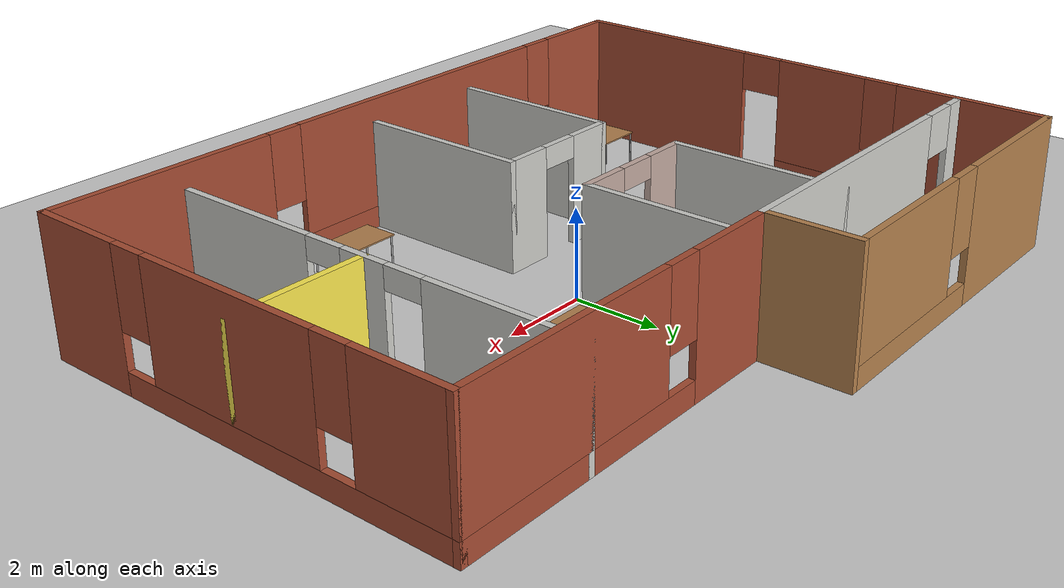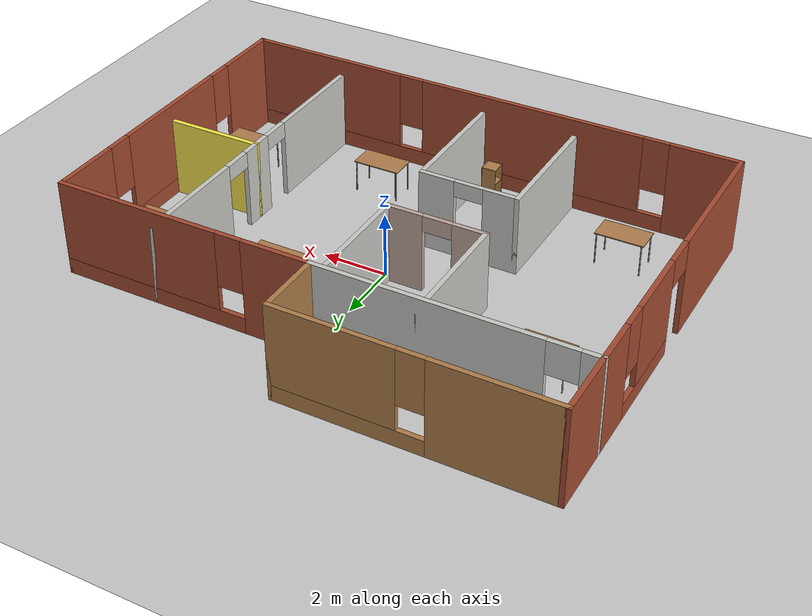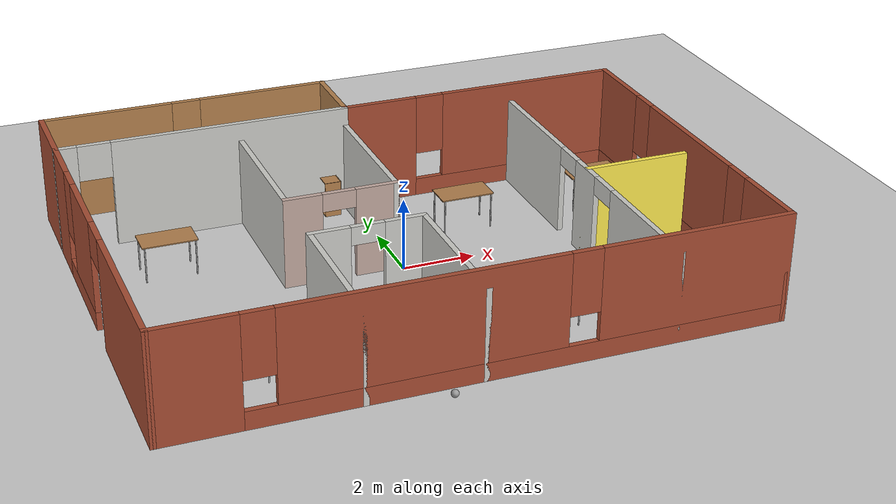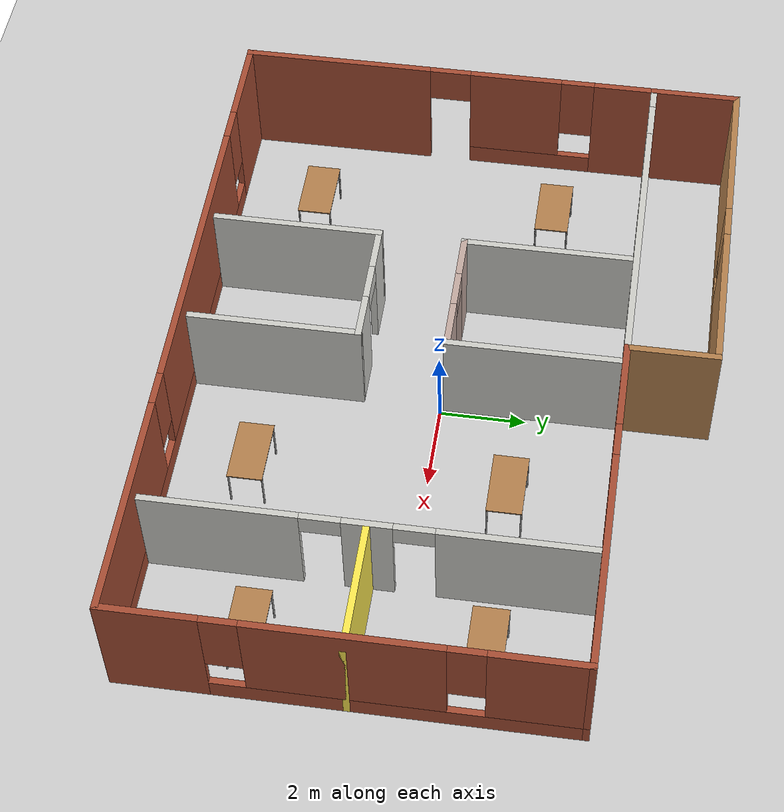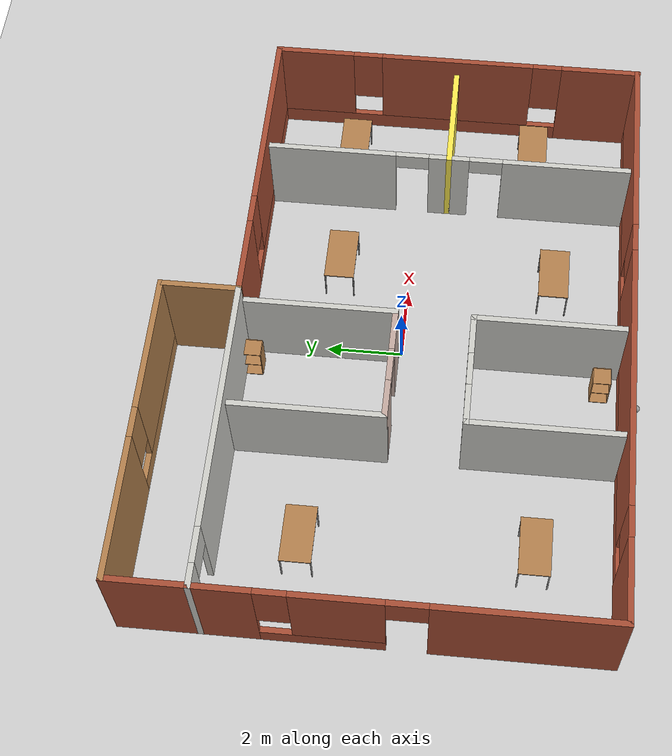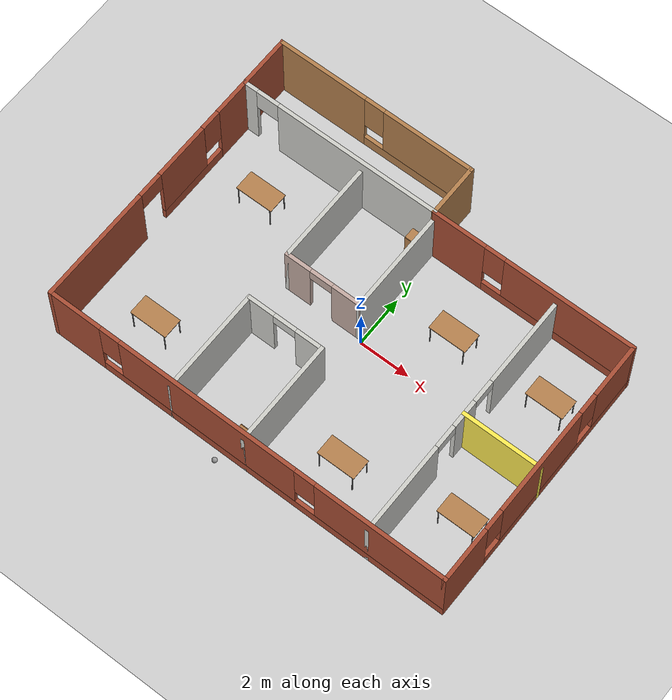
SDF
<sdf version="1.6">
 <world name="default">
  <plugin name="welcome_message" filename="libwelcome_message.so"/>
  <light name="sun" type="directional">
   <pose>0 0 10 0 -0 0</pose>
   <diffuse>0.8 0.8 0.8 1</diffuse>
   <specular>0.2 0.2 0.2 1</specular>
   <attenuation>
    <range>1000</range>
    <constant>0.9</constant>
    <linear>0.01</linear>
    <quadratic>0.001</quadratic>
   </attenuation>
   <direction>-0.5 0.1 -0.9</direction>
   <spot><inner_angle>0</inner_angle><outer_angle>0</outer_angle><falloff>0</falloff></spot>
  </light>
  <model name="ground_plane">
   <static>1</static>
   <link name="link">
    <collision name="collision">
     <geometry><plane><normal>0 0 1</normal><size>100 100</size></plane></geometry>
     <surface>
      <contact><collide_bitmask>65535</collide_bitmask></contact>
      <friction><ode><mu>100</mu><mu2>50</mu2></ode></friction>
     </surface>
    </collision>
    <visual name="visual">
     <cast_shadows>0</cast_shadows>
     <geometry><plane><normal>0 0 1</normal><size>100 100</size></plane></geometry>
     <material>
      <script><uri>file://media/materials/scripts/gazebo.material</uri><name>Gazebo/Grey</name></script>
     </material>
    </visual>
   </link>
  </model>
  <gravity>0 0 -9.8</gravity>
  <magnetic_field>6e-06 2.3e-05 -4.2e-05</magnetic_field>
  <atmosphere type="adiabatic"/>
  <physics name="default_physics" default="0" type="ode">
   <max_step_size>0.001</max_step_size>
   <real_time_factor>1</real_time_factor>
   <real_time_update_rate>1000</real_time_update_rate>
  </physics>
  <scene><ambient>0.4 0.4 0.4 1</ambient><background>0.7 0.7 0.7 1</background><shadows>1</shadows></scene>
  <spherical_coordinates>
   <surface_model>EARTH_WGS84</surface_model>
   <latitude_deg>0</latitude_deg>
   <longitude_deg>0</longitude_deg>
   <elevation>0</elevation>
   <heading_deg>0</heading_deg>
  </spherical_coordinates>
  <model name="Project_building">
   <pose>-0.16773 0.138901 0 0 -0 0</pose>
   <link name="Wall_0">
    <pose>-8 -1 0 0 -0 -1.5708</pose>
    <visual name="Wall_0_Visual_0">
     <pose>-4.30639 0 1.5 0 -0 0</pose>
     <geometry><box><size>1.53722 0.15 3</size></box></geometry>
     <material>
      <script><uri>file://media/materials/scripts/gazebo.material</uri><name>Gazebo/Bricks</name></script>
      <ambient>1 1 1 1</ambient>
     </material>
     <meta><layer>0</layer></meta>
    </visual>
    <collision name="Wall_0_Collision_0">
     <geometry><box><size>1.53722 0.15 3</size></box></geometry>
     <pose>-4.30639 0 1.5 0 -0 0</pose>
    </collision>
    <visual name="Wall_0_Visual_1">
     <pose>2.7875 0 1.5 0 -0 0</pose>
     <geometry><box><size>4.575 0.15 3</size></box></geometry>
     <material>
      <script><uri>file://media/materials/scripts/gazebo.material</uri><name>Gazebo/Bricks</name></script>
      <ambient>1 1 1 1</ambient>
     </material>
     <meta><layer>0</layer></meta>
    </visual>
    <collision name="Wall_0_Collision_1">
     <geometry><box><size>4.575 0.15 3</size></box></geometry>
     <pose>2.7875 0 1.5 0 -0 0</pose>
    </collision>
    <visual name="Wall_0_Visual_2">
     <pose>-2.01889 0 0.25 0 -0 0</pose>
     <geometry><box><size>3.03778 0.15 0.5</size></box></geometry>
     <material>
      <script><uri>file://media/materials/scripts/gazebo.material</uri><name>Gazebo/Bricks</name></script>
      <ambient>1 1 1 1</ambient>
     </material>
     <meta><layer>0</layer></meta>
    </visual>
    <collision name="Wall_0_Collision_2">
     <geometry><box><size>3.03778 0.15 0.5</size></box></geometry>
     <pose>-2.01889 0 0.25 0 -0 0</pose>
    </collision>
    <visual name="Wall_0_Visual_3">
     <pose>-1.61889 0 1.75 0 -0 0</pose>
     <geometry><box><size>2.23778 0.15 2.5</size></box></geometry>
     <material>
      <script><uri>file://media/materials/scripts/gazebo.material</uri><name>Gazebo/Bricks</name></script>
      <ambient>1 1 1 1</ambient>
     </material>
     <meta><layer>0</layer></meta>
    </visual>
    <collision name="Wall_0_Collision_3">
     <geometry><box><size>2.23778 0.15 2.5</size></box></geometry>
     <pose>-1.61889 0 1.75 0 -0 0</pose>
    </collision>
    <visual name="Wall_0_Visual_4">
     <pose>-3.13778 0 2.15 0 -0 0</pose>
     <geometry><box><size>0.8 0.15 1.7</size></box></geometry>
     <material>
      <script><uri>file://media/materials/scripts/gazebo.material</uri><name>Gazebo/Bricks</name></script>
      <ambient>1 1 1 1</ambient>
     </material>
     <meta><layer>0</layer></meta>
    </visual>
    <collision name="Wall_0_Collision_4">
     <geometry><box><size>0.8 0.15 1.7</size></box></geometry>
     <pose>-3.13778 0 2.15 0 -0 0</pose>
    </collision>
    <visual name="Wall_0_Visual_5">
     <pose>0 0 2.55 0 -0 0</pose>
     <geometry><box><size>1 0.15 0.9</size></box></geometry>
     <material>
      <script><uri>file://media/materials/scripts/gazebo.material</uri><name>Gazebo/Bricks</name></script>
      <ambient>1 1 1 1</ambient>
     </material>
     <meta><layer>0</layer></meta>
    </visual>
    <collision name="Wall_0_Collision_5">
     <geometry><box><size>1 0.15 0.9</size></box></geometry>
     <pose>0 0 2.55 0 -0 0</pose>
    </collision>
   </link>
   <link name="Wall_1">
    <pose>0 -6 0 0 -0 0</pose>
    <visual name="Wall_1_Visual_0">
     <pose>-6.9875 0 1.5 0 -0 0</pose>
     <geometry><box><size>2.175 0.15 3</size></box></geometry>
     <material>
      <script><uri>file://media/materials/scripts/gazebo.material</uri><name>Gazebo/Bricks</name></script>
      <ambient>1 1 1 1</ambient>
     </material>
     <meta><layer>0</layer></meta>
    </visual>
    <collision name="Wall_1_Collision_0">
     <geometry><box><size>2.175 0.15 3</size></box></geometry>
     <pose>-6.9875 0 1.5 0 -0 0</pose>
    </collision>
    <visual name="Wall_1_Visual_1">
     <pose>1.0875 0 0.25 0 -0 0</pose>
     <geometry><box><size>13.975 0.15 0.5</size></box></geometry>
     <material>
      <script><uri>file://media/materials/scripts/gazebo.material</uri><name>Gazebo/Bricks</name></script>
      <ambient>1 1 1 1</ambient>
     </material>
     <meta><layer>0</layer></meta>
    </visual>
    <collision name="Wall_1_Collision_1">
     <geometry><box><size>13.975 0.15 0.5</size></box></geometry>
     <pose>1.0875 0 0.25 0 -0 0</pose>
    </collision>
    <visual name="Wall_1_Visual_2">
     <pose>-1.5 0 1.75 0 -0 0</pose>
     <geometry><box><size>7.2 0.15 2.5</size></box></geometry>
     <material>
      <script><uri>file://media/materials/scripts/gazebo.material</uri><name>Gazebo/Bricks</name></script>
      <ambient>1 1 1 1</ambient>
     </material>
     <meta><layer>0</layer></meta>
    </visual>
    <collision name="Wall_1_Collision_2">
     <geometry><box><size>7.2 0.15 2.5</size></box></geometry>
     <pose>-1.5 0 1.75 0 -0 0</pose>
    </collision>
    <visual name="Wall_1_Visual_3">
     <pose>5.4875 0 1.75 0 -0 0</pose>
     <geometry><box><size>5.175 0.15 2.5</size></box></geometry>
     <material>
      <script><uri>file://media/materials/scripts/gazebo.material</uri><name>Gazebo/Bricks</name></script>
      <ambient>1 1 1 1</ambient>
     </material>
     <meta><layer>0</layer></meta>
    </visual>
    <collision name="Wall_1_Collision_3">
     <geometry><box><size>5.175 0.15 2.5</size></box></geometry>
     <pose>5.4875 0 1.75 0 -0 0</pose>
    </collision>
    <visual name="Wall_1_Visual_4">
     <pose>-5.5 0 2.15 0 -0 0</pose>
     <geometry><box><size>0.8 0.15 1.7</size></box></geometry>
     <material>
      <script><uri>file://media/materials/scripts/gazebo.material</uri><name>Gazebo/Bricks</name></script>
      <ambient>1 1 1 1</ambient>
     </material>
     <meta><layer>0</layer></meta>
    </visual>
    <collision name="Wall_1_Collision_4">
     <geometry><box><size>0.8 0.15 1.7</size></box></geometry>
     <pose>-5.5 0 2.15 0 -0 0</pose>
    </collision>
    <visual name="Wall_1_Visual_5">
     <pose>2.5 0 2.15 0 -0 0</pose>
     <geometry><box><size>0.8 0.15 1.7</size></box></geometry>
     <material>
      <script><uri>file://media/materials/scripts/gazebo.material</uri><name>Gazebo/Bricks</name></script>
      <ambient>1 1 1 1</ambient>
     </material>
     <meta><layer>0</layer></meta>
    </visual>
    <collision name="Wall_1_Collision_5">
     <geometry><box><size>0.8 0.15 1.7</size></box></geometry>
     <pose>2.5 0 2.15 0 -0 0</pose>
    </collision>
   </link>
   <link name="Wall_10">
    <pose>-1.5 0 0 0 -0 0</pose>
    <visual name="Wall_10_Visual_0">
     <pose>-1.04354 0 1.25 0 -0 0</pose>
     <geometry><box><size>1.06292 0.15 2.5</size></box></geometry>
     <material>
      <script><uri>file://media/materials/scripts/gazebo.material</uri><name>Gazebo/Grey</name></script>
      <ambient>0.760784 0.662745 0.627451 1</ambient>
     </material>
     <meta><layer>0</layer></meta>
    </visual>
    <collision name="Wall_10_Collision_0">
     <geometry><box><size>1.06292 0.15 2.5</size></box></geometry>
     <pose>-1.04354 0 1.25 0 -0 0</pose>
    </collision>
    <visual name="Wall_10_Visual_1">
     <pose>0.981459 0 1.25 0 -0 0</pose>
     <geometry><box><size>1.18708 0.15 2.5</size></box></geometry>
     <material>
      <script><uri>file://media/materials/scripts/gazebo.material</uri><name>Gazebo/Grey</name></script>
      <ambient>0.760784 0.662745 0.627451 1</ambient>
     </material>
     <meta><layer>0</layer></meta>
    </visual>
    <collision name="Wall_10_Collision_1">
     <geometry><box><size>1.18708 0.15 2.5</size></box></geometry>
     <pose>0.981459 0 1.25 0 -0 0</pose>
    </collision>
    <visual name="Wall_10_Visual_2">
     <pose>-0.062083 0 2.25 0 -0 0</pose>
     <geometry><box><size>0.9 0.15 0.5</size></box></geometry>
     <material>
      <script><uri>file://media/materials/scripts/gazebo.material</uri><name>Gazebo/Grey</name></script>
      <ambient>0.760784 0.662745 0.627451 1</ambient>
     </material>
     <meta><layer>0</layer></meta>
    </visual>
    <collision name="Wall_10_Collision_2">
     <geometry><box><size>0.9 0.15 0.5</size></box></geometry>
     <pose>-0.062083 0 2.25 0 -0 0</pose>
    </collision>
   </link>
   <link name="Wall_11">
    <collision name="Wall_11_Collision">
     <geometry><box><size>4.15 0.15 2.5</size></box></geometry>
     <pose>0 0 1.25 0 -0 0</pose>
    </collision>
    <visual name="Wall_11_Visual">
     <pose>0 0 1.25 0 -0 0</pose>
     <geometry><box><size>4.15 0.15 2.5</size></box></geometry>
     <material>
      <script><uri>file://media/materials/scripts/gazebo.material</uri><name>Gazebo/CeilingTiled</name></script>
      <ambient>0.760784 0.662745 0.627451 1</ambient>
     </material>
     <meta><layer>0</layer></meta>
    </visual>
    <pose>0 2 0 0 -0 1.5708</pose>
   </link>
   <link name="Wall_13">
    <collision name="Wall_13_Collision">
     <geometry><box><size>4.15 0.15 2.5</size></box></geometry>
     <pose>0 0 1.25 0 -0 0</pose>
    </collision>
    <visual name="Wall_13_Visual">
     <pose>0 0 1.25 0 -0 0</pose>
     <geometry><box><size>4.15 0.15 2.5</size></box></geometry>
     <material>
      <script><uri>file://media/materials/scripts/gazebo.material</uri><name>Gazebo/CeilingTiled</name></script>
      <ambient>0.760784 0.662745 0.627451 1</ambient>
     </material>
     <meta><layer>0</layer></meta>
    </visual>
    <pose>-3 -4 0 0 -0 1.5708</pose>
   </link>
   <link name="Wall_14">
    <pose>-1.5 -2 0 0 -0 0</pose>
    <visual name="Wall_14_Visual_0">
     <pose>-1.0125 0 1.25 0 -0 0</pose>
     <geometry><box><size>1.125 0.15 2.5</size></box></geometry>
     <material>
      <script><uri>file://media/materials/scripts/gazebo.material</uri><name>Gazebo/CeilingTiled</name></script>
      <ambient>0.760784 0.662745 0.627451 1</ambient>
     </material>
     <meta><layer>0</layer></meta>
    </visual>
    <collision name="Wall_14_Collision_0">
     <geometry><box><size>1.125 0.15 2.5</size></box></geometry>
     <pose>-1.0125 0 1.25 0 -0 0</pose>
    </collision>
    <visual name="Wall_14_Visual_1">
     <pose>1.0125 0 1.25 0 -0 0</pose>
     <geometry><box><size>1.125 0.15 2.5</size></box></geometry>
     <material>
      <script><uri>file://media/materials/scripts/gazebo.material</uri><name>Gazebo/CeilingTiled</name></script>
      <ambient>0.760784 0.662745 0.627451 1</ambient>
     </material>
     <meta><layer>0</layer></meta>
    </visual>
    <collision name="Wall_14_Collision_1">
     <geometry><box><size>1.125 0.15 2.5</size></box></geometry>
     <pose>1.0125 0 1.25 0 -0 0</pose>
    </collision>
    <visual name="Wall_14_Visual_2">
     <pose>0 0 2.25 0 -0 0</pose>
     <geometry><box><size>0.9 0.15 0.5</size></box></geometry>
     <material>
      <script><uri>file://media/materials/scripts/gazebo.material</uri><name>Gazebo/CeilingTiled</name></script>
      <ambient>0.760784 0.662745 0.627451 1</ambient>
     </material>
     <meta><layer>0</layer></meta>
    </visual>
    <collision name="Wall_14_Collision_2">
     <geometry><box><size>0.9 0.15 0.5</size></box></geometry>
     <pose>0 0 2.25 0 -0 0</pose>
    </collision>
   </link>
   <link name="Wall_15">
    <collision name="Wall_15_Collision">
     <geometry><box><size>4.15 0.15 2.5</size></box></geometry>
     <pose>0 0 1.25 0 -0 0</pose>
    </collision>
    <visual name="Wall_15_Visual">
     <pose>0 0 1.25 0 -0 0</pose>
     <geometry><box><size>4.15 0.15 2.5</size></box></geometry>
     <material>
      <script><uri>file://media/materials/scripts/gazebo.material</uri><name>Gazebo/CeilingTiled</name></script>
      <ambient>0.760784 0.662745 0.627451 1</ambient>
     </material>
     <meta><layer>0</layer></meta>
    </visual>
    <pose>0 -4 0 0 -0 -1.5708</pose>
   </link>
   <link name="Wall_18">
    <collision name="Wall_18_Collision">
     <geometry><box><size>2.15 0.15 3</size></box></geometry>
     <pose>0 0 1.5 0 -0 0</pose>
    </collision>
    <visual name="Wall_18_Visual">
     <pose>0 0 1.5 0 -0 0</pose>
     <geometry><box><size>2.15 0.15 3</size></box></geometry>
     <material>
      <script><uri>file://media/materials/scripts/gazebo.material</uri><name>Gazebo/Bricks</name></script>
      <ambient>1 1 1 1</ambient>
     </material>
     <meta><layer>0</layer></meta>
    </visual>
    <pose>-8 5 0 0 -0 1.5708</pose>
   </link>
   <link name="Wall_19">
    <pose>-4 6 0 0 -0 0</pose>
    <visual name="Wall_19_Visual_0">
     <pose>-2.2375 0 1.5 0 -0 0</pose>
     <geometry><box><size>3.675 0.15 3</size></box></geometry>
     <material>
      <script><uri>file://media/materials/scripts/gazebo.material</uri><name>Gazebo/Wood</name></script>
      <ambient>1 1 1 1</ambient>
     </material>
     <meta><layer>0</layer></meta>
    </visual>
    <collision name="Wall_19_Collision_0">
     <geometry><box><size>3.675 0.15 3</size></box></geometry>
     <pose>-2.2375 0 1.5 0 -0 0</pose>
    </collision>
    <visual name="Wall_19_Visual_1">
     <pose>1.8375 0 0.25 0 -0 0</pose>
     <geometry><box><size>4.475 0.15 0.5</size></box></geometry>
     <material>
      <script><uri>file://media/materials/scripts/gazebo.material</uri><name>Gazebo/Wood</name></script>
      <ambient>1 1 1 1</ambient>
     </material>
     <meta><layer>0</layer></meta>
    </visual>
    <collision name="Wall_19_Collision_1">
     <geometry><box><size>4.475 0.15 0.5</size></box></geometry>
     <pose>1.8375 0 0.25 0 -0 0</pose>
    </collision>
    <visual name="Wall_19_Visual_2">
     <pose>2.2375 0 1.75 0 -0 0</pose>
     <geometry><box><size>3.675 0.15 2.5</size></box></geometry>
     <material>
      <script><uri>file://media/materials/scripts/gazebo.material</uri><name>Gazebo/Wood</name></script>
      <ambient>1 1 1 1</ambient>
     </material>
     <meta><layer>0</layer></meta>
    </visual>
    <collision name="Wall_19_Collision_2">
     <geometry><box><size>3.675 0.15 2.5</size></box></geometry>
     <pose>2.2375 0 1.75 0 -0 0</pose>
    </collision>
    <visual name="Wall_19_Visual_3">
     <pose>0 0 2.15 0 -0 0</pose>
     <geometry><box><size>0.8 0.15 1.7</size></box></geometry>
     <material>
      <script><uri>file://media/materials/scripts/gazebo.material</uri><name>Gazebo/Wood</name></script>
      <ambient>1 1 1 1</ambient>
     </material>
     <meta><layer>0</layer></meta>
    </visual>
    <collision name="Wall_19_Collision_3">
     <geometry><box><size>0.8 0.15 1.7</size></box></geometry>
     <pose>0 0 2.15 0 -0 0</pose>
    </collision>
   </link>
   <link name="Wall_2">
    <pose>8 -1 0 0 -0 1.5708</pose>
    <visual name="Wall_2_Visual_0">
     <pose>-3.9875 0 1.5 0 -0 0</pose>
     <geometry><box><size>2.175 0.15 3</size></box></geometry>
     <material>
      <script><uri>file://media/materials/scripts/gazebo.material</uri><name>Gazebo/Bricks</name></script>
      <ambient>1 1 1 1</ambient>
     </material>
     <meta><layer>0</layer></meta>
    </visual>
    <collision name="Wall_2_Collision_0">
     <geometry><box><size>2.175 0.15 3</size></box></geometry>
     <pose>-3.9875 0 1.5 0 -0 0</pose>
    </collision>
    <visual name="Wall_2_Visual_1">
     <pose>1.0875 0 0.25 0 -0 0</pose>
     <geometry><box><size>7.975 0.15 0.5</size></box></geometry>
     <material>
      <script><uri>file://media/materials/scripts/gazebo.material</uri><name>Gazebo/Bricks</name></script>
      <ambient>1 1 1 1</ambient>
     </material>
     <meta><layer>0</layer></meta>
    </visual>
    <collision name="Wall_2_Collision_1">
     <geometry><box><size>7.975 0.15 0.5</size></box></geometry>
     <pose>1.0875 0 0.25 0 -0 0</pose>
    </collision>
    <visual name="Wall_2_Visual_2">
     <pose>0 0 1.75 0 -0 0</pose>
     <geometry><box><size>4.2 0.15 2.5</size></box></geometry>
     <material>
      <script><uri>file://media/materials/scripts/gazebo.material</uri><name>Gazebo/Bricks</name></script>
      <ambient>1 1 1 1</ambient>
     </material>
     <meta><layer>0</layer></meta>
    </visual>
    <collision name="Wall_2_Collision_2">
     <geometry><box><size>4.2 0.15 2.5</size></box></geometry>
     <pose>0 0 1.75 0 -0 0</pose>
    </collision>
    <visual name="Wall_2_Visual_3">
     <pose>3.9875 0 1.75 0 -0 0</pose>
     <geometry><box><size>2.175 0.15 2.5</size></box></geometry>
     <material>
      <script><uri>file://media/materials/scripts/gazebo.material</uri><name>Gazebo/Bricks</name></script>
      <ambient>1 1 1 1</ambient>
     </material>
     <meta><layer>0</layer></meta>
    </visual>
    <collision name="Wall_2_Collision_3">
     <geometry><box><size>2.175 0.15 2.5</size></box></geometry>
     <pose>3.9875 0 1.75 0 -0 0</pose>
    </collision>
    <visual name="Wall_2_Visual_4">
     <pose>-2.5 0 2.15 0 -0 0</pose>
     <geometry><box><size>0.8 0.15 1.7</size></box></geometry>
     <material>
      <script><uri>file://media/materials/scripts/gazebo.material</uri><name>Gazebo/Bricks</name></script>
      <ambient>1 1 1 1</ambient>
     </material>
     <meta><layer>0</layer></meta>
    </visual>
    <collision name="Wall_2_Collision_4">
     <geometry><box><size>0.8 0.15 1.7</size></box></geometry>
     <pose>-2.5 0 2.15 0 -0 0</pose>
    </collision>
    <visual name="Wall_2_Visual_5">
     <pose>2.5 0 2.15 0 -0 0</pose>
     <geometry><box><size>0.8 0.15 1.7</size></box></geometry>
     <material>
      <script><uri>file://media/materials/scripts/gazebo.material</uri><name>Gazebo/Bricks</name></script>
      <ambient>1 1 1 1</ambient>
     </material>
     <meta><layer>0</layer></meta>
    </visual>
    <collision name="Wall_2_Collision_5">
     <geometry><box><size>0.8 0.15 1.7</size></box></geometry>
     <pose>2.5 0 2.15 0 -0 0</pose>
    </collision>
   </link>
   <link name="Wall_20">
    <collision name="Wall_20_Collision">
     <geometry><box><size>2.15 0.15 3</size></box></geometry>
     <pose>0 0 1.5 0 -0 0</pose>
    </collision>
    <visual name="Wall_20_Visual">
     <pose>0 0 1.5 0 -0 0</pose>
     <geometry><box><size>2.15 0.15 3</size></box></geometry>
     <material>
      <script><uri>file://media/materials/scripts/gazebo.material</uri><name>Gazebo/Wood</name></script>
      <ambient>1 1 1 1</ambient>
     </material>
     <meta><layer>0</layer></meta>
    </visual>
    <pose>0 5 0 0 -0 -1.5708</pose>
   </link>
   <link name="Wall_22">
    <pose>-4 4 0 0 -0 0</pose>
    <visual name="Wall_22_Visual_0">
     <pose>-3.7625 0 1.5 0 -0 0</pose>
     <geometry><box><size>0.625 0.15 3</size></box></geometry>
     <material>
      <script><uri>file://media/materials/scripts/gazebo.material</uri><name>Gazebo/CeilingTiled</name></script>
      <ambient>1 1 1 1</ambient>
     </material>
     <meta><layer>0</layer></meta>
    </visual>
    <collision name="Wall_22_Collision_0">
     <geometry><box><size>0.625 0.15 3</size></box></geometry>
     <pose>-3.7625 0 1.5 0 -0 0</pose>
    </collision>
    <visual name="Wall_22_Visual_1">
     <pose>0.7625 0 1.5 0 -0 0</pose>
     <geometry><box><size>6.625 0.15 3</size></box></geometry>
     <material>
      <script><uri>file://media/materials/scripts/gazebo.material</uri><name>Gazebo/CeilingTiled</name></script>
      <ambient>1 1 1 1</ambient>
     </material>
     <meta><layer>0</layer></meta>
    </visual>
    <collision name="Wall_22_Collision_1">
     <geometry><box><size>6.625 0.15 3</size></box></geometry>
     <pose>0.7625 0 1.5 0 -0 0</pose>
    </collision>
    <visual name="Wall_22_Visual_2">
     <pose>-3 0 2.5 0 -0 0</pose>
     <geometry><box><size>0.9 0.15 1</size></box></geometry>
     <material>
      <script><uri>file://media/materials/scripts/gazebo.material</uri><name>Gazebo/CeilingTiled</name></script>
      <ambient>1 1 1 1</ambient>
     </material>
     <meta><layer>0</layer></meta>
    </visual>
    <collision name="Wall_22_Collision_2">
     <geometry><box><size>0.9 0.15 1</size></box></geometry>
     <pose>-3 0 2.5 0 -0 0</pose>
    </collision>
   </link>
   <link name="Wall_23">
    <pose>4 4 0 0 -0 0</pose>
    <visual name="Wall_23_Visual_0">
     <pose>-2.9875 0 1.5 0 -0 0</pose>
     <geometry><box><size>2.175 0.15 3</size></box></geometry>
     <material>
      <script><uri>file://media/materials/scripts/gazebo.material</uri><name>Gazebo/Bricks</name></script>
      <ambient>1 1 1 1</ambient>
     </material>
     <meta><layer>0</layer></meta>
    </visual>
    <collision name="Wall_23_Collision_0">
     <geometry><box><size>2.175 0.15 3</size></box></geometry>
     <pose>-2.9875 0 1.5 0 -0 0</pose>
    </collision>
    <visual name="Wall_23_Visual_1">
     <pose>1.0875 0 0.25 0 -0 0</pose>
     <geometry><box><size>5.975 0.15 0.5</size></box></geometry>
     <material>
      <script><uri>file://media/materials/scripts/gazebo.material</uri><name>Gazebo/Bricks</name></script>
      <ambient>1 1 1 1</ambient>
     </material>
     <meta><layer>0</layer></meta>
    </visual>
    <collision name="Wall_23_Collision_1">
     <geometry><box><size>5.975 0.15 0.5</size></box></geometry>
     <pose>1.0875 0 0.25 0 -0 0</pose>
    </collision>
    <visual name="Wall_23_Visual_2">
     <pose>1.4875 0 1.75 0 -0 0</pose>
     <geometry><box><size>5.175 0.15 2.5</size></box></geometry>
     <material>
      <script><uri>file://media/materials/scripts/gazebo.material</uri><name>Gazebo/Bricks</name></script>
      <ambient>1 1 1 1</ambient>
     </material>
     <meta><layer>0</layer></meta>
    </visual>
    <collision name="Wall_23_Collision_2">
     <geometry><box><size>5.175 0.15 2.5</size></box></geometry>
     <pose>1.4875 0 1.75 0 -0 0</pose>
    </collision>
    <visual name="Wall_23_Visual_3">
     <pose>-1.5 0 2.15 0 -0 0</pose>
     <geometry><box><size>0.8 0.15 1.7</size></box></geometry>
     <material>
      <script><uri>file://media/materials/scripts/gazebo.material</uri><name>Gazebo/Bricks</name></script>
      <ambient>1 1 1 1</ambient>
     </material>
     <meta><layer>0</layer></meta>
    </visual>
    <collision name="Wall_23_Collision_3">
     <geometry><box><size>0.8 0.15 1.7</size></box></geometry>
     <pose>-1.5 0 2.15 0 -0 0</pose>
    </collision>
   </link>
   <link name="Wall_5">
    <pose>5 -1 0 0 -0 -1.5708</pose>
    <visual name="Wall_5_Visual_0">
     <pose>-3.2625 0 1.25 0 -0 0</pose>
     <geometry><box><size>3.625 0.15 2.5</size></box></geometry>
     <material>
      <script><uri>file://media/materials/scripts/gazebo.material</uri><name>Gazebo/CeilingTiled</name></script>
      <ambient>1 1 1 1</ambient>
     </material>
     <meta><layer>0</layer></meta>
    </visual>
    <collision name="Wall_5_Collision_0">
     <geometry><box><size>3.625 0.15 2.5</size></box></geometry>
     <pose>-3.2625 0 1.25 0 -0 0</pose>
    </collision>
    <visual name="Wall_5_Visual_1">
     <pose>0 0 1.25 0 -0 0</pose>
     <geometry><box><size>1.1 0.15 2.5</size></box></geometry>
     <material>
      <script><uri>file://media/materials/scripts/gazebo.material</uri><name>Gazebo/CeilingTiled</name></script>
      <ambient>1 1 1 1</ambient>
     </material>
     <meta><layer>0</layer></meta>
    </visual>
    <collision name="Wall_5_Collision_1">
     <geometry><box><size>1.1 0.15 2.5</size></box></geometry>
     <pose>0 0 1.25 0 -0 0</pose>
    </collision>
    <visual name="Wall_5_Visual_2">
     <pose>3.2625 0 1.25 0 -0 0</pose>
     <geometry><box><size>3.625 0.15 2.5</size></box></geometry>
     <material>
      <script><uri>file://media/materials/scripts/gazebo.material</uri><name>Gazebo/CeilingTiled</name></script>
      <ambient>1 1 1 1</ambient>
     </material>
     <meta><layer>0</layer></meta>
    </visual>
    <collision name="Wall_5_Collision_2">
     <geometry><box><size>3.625 0.15 2.5</size></box></geometry>
     <pose>3.2625 0 1.25 0 -0 0</pose>
    </collision>
    <visual name="Wall_5_Visual_3">
     <pose>-1 0 2.25 0 -0 0</pose>
     <geometry><box><size>0.9 0.15 0.5</size></box></geometry>
     <material>
      <script><uri>file://media/materials/scripts/gazebo.material</uri><name>Gazebo/CeilingTiled</name></script>
      <ambient>1 1 1 1</ambient>
     </material>
     <meta><layer>0</layer></meta>
    </visual>
    <collision name="Wall_5_Collision_3">
     <geometry><box><size>0.9 0.15 0.5</size></box></geometry>
     <pose>-1 0 2.25 0 -0 0</pose>
    </collision>
    <visual name="Wall_5_Visual_4">
     <pose>1 0 2.25 0 -0 0</pose>
     <geometry><box><size>0.9 0.15 0.5</size></box></geometry>
     <material>
      <script><uri>file://media/materials/scripts/gazebo.material</uri><name>Gazebo/CeilingTiled</name></script>
      <ambient>1 1 1 1</ambient>
     </material>
     <meta><layer>0</layer></meta>
    </visual>
    <collision name="Wall_5_Collision_4">
     <geometry><box><size>0.9 0.15 0.5</size></box></geometry>
     <pose>1 0 2.25 0 -0 0</pose>
    </collision>
   </link>
   <link name="Wall_7">
    <collision name="Wall_7_Collision">
     <geometry><box><size>3.15 0.15 2.5</size></box></geometry>
     <pose>0 0 1.25 0 -0 0</pose>
    </collision>
    <visual name="Wall_7_Visual">
     <pose>0 0 1.25 0 -0 0</pose>
     <geometry><box><size>3.15 0.15 2.5</size></box></geometry>
     <material>
      <script><uri>file://media/materials/scripts/gazebo.material</uri><name>Gazebo/Grey</name></script>
      <ambient>0.988235 0.913725 0.309804 1</ambient>
     </material>
     <meta><layer>0</layer></meta>
    </visual>
    <pose>6.5 -1 0 0 -0 3.14159</pose>
   </link>
   <link name="Wall_9">
    <collision name="Wall_9_Collision">
     <geometry><box><size>4.15 0.15 2.5</size></box></geometry>
     <pose>0 0 1.25 0 -0 0</pose>
    </collision>
    <visual name="Wall_9_Visual">
     <pose>0 0 1.25 0 -0 0</pose>
     <geometry><box><size>4.15 0.15 2.5</size></box></geometry>
     <material>
      <script><uri>file://media/materials/scripts/gazebo.material</uri><name>Gazebo/CeilingTiled</name></script>
      <ambient>0.760784 0.662745 0.627451 1</ambient>
     </material>
     <meta><layer>0</layer></meta>
    </visual>
    <pose>-3 2 0 0 -0 -1.5708</pose>
   </link>
   <static>1</static>
  </model>
  <model name="table">
   <static>1</static>
   <link name="link">
    <collision name="surface">
     <pose>0 0 1 0 -0 0</pose>
     <geometry><box><size>1.5 0.8 0.03</size></box></geometry>
     <surface><friction><ode><mu>0.6</mu><mu2>0.6</mu2></ode></friction></surface>
    </collision>
    <visual name="visual1">
     <pose>0 0 1 0 -0 0</pose>
     <geometry><box><size>1.5 0.8 0.03</size></box></geometry>
     <material>
      <script><uri>file://media/materials/scripts/gazebo.material</uri><name>Gazebo/Wood</name></script>
     </material>
    </visual>
    <collision name="front_left_leg">
     <pose>0.68 0.38 0.5 0 -0 0</pose>
     <geometry><cylinder><radius>0.02</radius><length>1</length></cylinder></geometry>
    </collision>
    <visual name="front_left_leg">
     <pose>0.68 0.38 0.5 0 -0 0</pose>
     <geometry><cylinder><radius>0.02</radius><length>1</length></cylinder></geometry>
     <material>
      <script><uri>file://media/materials/scripts/gazebo.material</uri><name>Gazebo/Grey</name></script>
     </material>
    </visual>
    <collision name="front_right_leg">
     <pose>0.68 -0.38 0.5 0 -0 0</pose>
     <geometry><cylinder><radius>0.02</radius><length>1</length></cylinder></geometry>
    </collision>
    <visual name="front_right_leg">
     <pose>0.68 -0.38 0.5 0 -0 0</pose>
     <geometry><cylinder><radius>0.02</radius><length>1</length></cylinder></geometry>
     <material>
      <script><uri>file://media/materials/scripts/gazebo.material</uri><name>Gazebo/Grey</name></script>
     </material>
    </visual>
    <collision name="back_right_leg">
     <pose>-0.68 -0.38 0.5 0 -0 0</pose>
     <geometry><cylinder><radius>0.02</radius><length>1</length></cylinder></geometry>
    </collision>
    <visual name="back_right_leg">
     <pose>-0.68 -0.38 0.5 0 -0 0</pose>
     <geometry><cylinder><radius>0.02</radius><length>1</length></cylinder></geometry>
     <material>
      <script><uri>file://media/materials/scripts/gazebo.material</uri><name>Gazebo/Grey</name></script>
     </material>
    </visual>
    <collision name="back_left_leg">
     <pose>-0.68 0.38 0.5 0 -0 0</pose>
     <geometry><cylinder><radius>0.02</radius><length>1</length></cylinder></geometry>
    </collision>
    <visual name="back_left_leg">
     <pose>-0.68 0.38 0.5 0 -0 0</pose>
     <geometry><cylinder><radius>0.02</radius><length>1</length></cylinder></geometry>
     <material>
      <script><uri>file://media/materials/scripts/gazebo.material</uri><name>Gazebo/Grey</name></script>
     </material>
    </visual>
   </link>
   <pose>-5.64839 -3.79155 0 0 -0 0</pose>
  </model>
  <model name="table_0">
   <static>1</static>
   <link name="link">
    <collision name="surface">
     <pose>0 0 1 0 -0 0</pose>
     <geometry><box><size>1.5 0.8 0.03</size></box></geometry>
     <surface><friction><ode><mu>0.6</mu><mu2>0.6</mu2></ode></friction></surface>
    </collision>
    <visual name="visual1">
     <pose>0 0 1 0 -0 0</pose>
     <geometry><box><size>1.5 0.8 0.03</size></box></geometry>
     <material>
      <script><uri>file://media/materials/scripts/gazebo.material</uri><name>Gazebo/Wood</name></script>
     </material>
    </visual>
    <collision name="front_left_leg">
     <pose>0.68 0.38 0.5 0 -0 0</pose>
     <geometry><cylinder><radius>0.02</radius><length>1</length></cylinder></geometry>
    </collision>
    <visual name="front_left_leg">
     <pose>0.68 0.38 0.5 0 -0 0</pose>
     <geometry><cylinder><radius>0.02</radius><length>1</length></cylinder></geometry>
     <material>
      <script><uri>file://media/materials/scripts/gazebo.material</uri><name>Gazebo/Grey</name></script>
     </material>
    </visual>
    <collision name="front_right_leg">
     <pose>0.68 -0.38 0.5 0 -0 0</pose>
     <geometry><cylinder><radius>0.02</radius><length>1</length></cylinder></geometry>
    </collision>
    <visual name="front_right_leg">
     <pose>0.68 -0.38 0.5 0 -0 0</pose>
     <geometry><cylinder><radius>0.02</radius><length>1</length></cylinder></geometry>
     <material>
      <script><uri>file://media/materials/scripts/gazebo.material</uri><name>Gazebo/Grey</name></script>
     </material>
    </visual>
    <collision name="back_right_leg">
     <pose>-0.68 -0.38 0.5 0 -0 0</pose>
     <geometry><cylinder><radius>0.02</radius><length>1</length></cylinder></geometry>
    </collision>
    <visual name="back_right_leg">
     <pose>-0.68 -0.38 0.5 0 -0 0</pose>
     <geometry><cylinder><radius>0.02</radius><length>1</length></cylinder></geometry>
     <material>
      <script><uri>file://media/materials/scripts/gazebo.material</uri><name>Gazebo/Grey</name></script>
     </material>
    </visual>
    <collision name="back_left_leg">
     <pose>-0.68 0.38 0.5 0 -0 0</pose>
     <geometry><cylinder><radius>0.02</radius><length>1</length></cylinder></geometry>
    </collision>
    <visual name="back_left_leg">
     <pose>-0.68 0.38 0.5 0 -0 0</pose>
     <geometry><cylinder><radius>0.02</radius><length>1</length></cylinder></geometry>
     <material>
      <script><uri>file://media/materials/scripts/gazebo.material</uri><name>Gazebo/Grey</name></script>
     </material>
    </visual>
   </link>
   <pose>-5.8384 2.01196 0 0 -0 0</pose>
  </model>
  <model name="table_1">
   <static>1</static>
   <link name="link">
    <collision name="surface">
     <pose>0 0 1 0 -0 0</pose>
     <geometry><box><size>1.5 0.8 0.03</size></box></geometry>
     <surface><friction><ode><mu>0.6</mu><mu2>0.6</mu2></ode></friction></surface>
    </collision>
    <visual name="visual1">
     <pose>0 0 1 0 -0 0</pose>
     <geometry><box><size>1.5 0.8 0.03</size></box></geometry>
     <material>
      <script><uri>file://media/materials/scripts/gazebo.material</uri><name>Gazebo/Wood</name></script>
     </material>
    </visual>
    <collision name="front_left_leg">
     <pose>0.68 0.38 0.5 0 -0 0</pose>
     <geometry><cylinder><radius>0.02</radius><length>1</length></cylinder></geometry>
    </collision>
    <visual name="front_left_leg">
     <pose>0.68 0.38 0.5 0 -0 0</pose>
     <geometry><cylinder><radius>0.02</radius><length>1</length></cylinder></geometry>
     <material>
      <script><uri>file://media/materials/scripts/gazebo.material</uri><name>Gazebo/Grey</name></script>
     </material>
    </visual>
    <collision name="front_right_leg">
     <pose>0.68 -0.38 0.5 0 -0 0</pose>
     <geometry><cylinder><radius>0.02</radius><length>1</length></cylinder></geometry>
    </collision>
    <visual name="front_right_leg">
     <pose>0.68 -0.38 0.5 0 -0 0</pose>
     <geometry><cylinder><radius>0.02</radius><length>1</length></cylinder></geometry>
     <material>
      <script><uri>file://media/materials/scripts/gazebo.material</uri><name>Gazebo/Grey</name></script>
     </material>
    </visual>
    <collision name="back_right_leg">
     <pose>-0.68 -0.38 0.5 0 -0 0</pose>
     <geometry><cylinder><radius>0.02</radius><length>1</length></cylinder></geometry>
    </collision>
    <visual name="back_right_leg">
     <pose>-0.68 -0.38 0.5 0 -0 0</pose>
     <geometry><cylinder><radius>0.02</radius><length>1</length></cylinder></geometry>
     <material>
      <script><uri>file://media/materials/scripts/gazebo.material</uri><name>Gazebo/Grey</name></script>
     </material>
    </visual>
    <collision name="back_left_leg">
     <pose>-0.68 0.38 0.5 0 -0 0</pose>
     <geometry><cylinder><radius>0.02</radius><length>1</length></cylinder></geometry>
    </collision>
    <visual name="back_left_leg">
     <pose>-0.68 0.38 0.5 0 -0 0</pose>
     <geometry><cylinder><radius>0.02</radius><length>1</length></cylinder></geometry>
     <material>
      <script><uri>file://media/materials/scripts/gazebo.material</uri><name>Gazebo/Grey</name></script>
     </material>
    </visual>
   </link>
   <pose>2.44976 1.85204 0 0 -0 0</pose>
  </model>
  <model name="table_2">
   <static>1</static>
   <link name="link">
    <collision name="surface">
     <pose>0 0 1 0 -0 0</pose>
     <geometry><box><size>1.5 0.8 0.03</size></box></geometry>
     <surface><friction><ode><mu>0.6</mu><mu2>0.6</mu2></ode></friction></surface>
    </collision>
    <visual name="visual1">
     <pose>0 0 1 0 -0 0</pose>
     <geometry><box><size>1.5 0.8 0.03</size></box></geometry>
     <material>
      <script><uri>file://media/materials/scripts/gazebo.material</uri><name>Gazebo/Wood</name></script>
     </material>
    </visual>
    <collision name="front_left_leg">
     <pose>0.68 0.38 0.5 0 -0 0</pose>
     <geometry><cylinder><radius>0.02</radius><length>1</length></cylinder></geometry>
    </collision>
    <visual name="front_left_leg">
     <pose>0.68 0.38 0.5 0 -0 0</pose>
     <geometry><cylinder><radius>0.02</radius><length>1</length></cylinder></geometry>
     <material>
      <script><uri>file://media/materials/scripts/gazebo.material</uri><name>Gazebo/Grey</name></script>
     </material>
    </visual>
    <collision name="front_right_leg">
     <pose>0.68 -0.38 0.5 0 -0 0</pose>
     <geometry><cylinder><radius>0.02</radius><length>1</length></cylinder></geometry>
    </collision>
    <visual name="front_right_leg">
     <pose>0.68 -0.38 0.5 0 -0 0</pose>
     <geometry><cylinder><radius>0.02</radius><length>1</length></cylinder></geometry>
     <material>
      <script><uri>file://media/materials/scripts/gazebo.material</uri><name>Gazebo/Grey</name></script>
     </material>
    </visual>
    <collision name="back_right_leg">
     <pose>-0.68 -0.38 0.5 0 -0 0</pose>
     <geometry><cylinder><radius>0.02</radius><length>1</length></cylinder></geometry>
    </collision>
    <visual name="back_right_leg">
     <pose>-0.68 -0.38 0.5 0 -0 0</pose>
     <geometry><cylinder><radius>0.02</radius><length>1</length></cylinder></geometry>
     <material>
      <script><uri>file://media/materials/scripts/gazebo.material</uri><name>Gazebo/Grey</name></script>
     </material>
    </visual>
    <collision name="back_left_leg">
     <pose>-0.68 0.38 0.5 0 -0 0</pose>
     <geometry><cylinder><radius>0.02</radius><length>1</length></cylinder></geometry>
    </collision>
    <visual name="back_left_leg">
     <pose>-0.68 0.38 0.5 0 -0 0</pose>
     <geometry><cylinder><radius>0.02</radius><length>1</length></cylinder></geometry>
     <material>
      <script><uri>file://media/materials/scripts/gazebo.material</uri><name>Gazebo/Grey</name></script>
     </material>
    </visual>
   </link>
   <pose>2.32676 -3.93452 0 0 -0 0</pose>
  </model>
  <model name="table_3">
   <static>1</static>
   <link name="link">
    <collision name="surface">
     <pose>0 0 1 0 -0 0</pose>
     <geometry><box><size>1.5 0.8 0.03</size></box></geometry>
     <surface><friction><ode><mu>0.6</mu><mu2>0.6</mu2></ode></friction></surface>
    </collision>
    <visual name="visual1">
     <pose>0 0 1 0 -0 0</pose>
     <geometry><box><size>1.5 0.8 0.03</size></box></geometry>
     <material>
      <script><uri>file://media/materials/scripts/gazebo.material</uri><name>Gazebo/Wood</name></script>
     </material>
    </visual>
    <collision name="front_left_leg">
     <pose>0.68 0.38 0.5 0 -0 0</pose>
     <geometry><cylinder><radius>0.02</radius><length>1</length></cylinder></geometry>
    </collision>
    <visual name="front_left_leg">
     <pose>0.68 0.38 0.5 0 -0 0</pose>
     <geometry><cylinder><radius>0.02</radius><length>1</length></cylinder></geometry>
     <material>
      <script><uri>file://media/materials/scripts/gazebo.material</uri><name>Gazebo/Grey</name></script>
     </material>
    </visual>
    <collision name="front_right_leg">
     <pose>0.68 -0.38 0.5 0 -0 0</pose>
     <geometry><cylinder><radius>0.02</radius><length>1</length></cylinder></geometry>
    </collision>
    <visual name="front_right_leg">
     <pose>0.68 -0.38 0.5 0 -0 0</pose>
     <geometry><cylinder><radius>0.02</radius><length>1</length></cylinder></geometry>
     <material>
      <script><uri>file://media/materials/scripts/gazebo.material</uri><name>Gazebo/Grey</name></script>
     </material>
    </visual>
    <collision name="back_right_leg">
     <pose>-0.68 -0.38 0.5 0 -0 0</pose>
     <geometry><cylinder><radius>0.02</radius><length>1</length></cylinder></geometry>
    </collision>
    <visual name="back_right_leg">
     <pose>-0.68 -0.38 0.5 0 -0 0</pose>
     <geometry><cylinder><radius>0.02</radius><length>1</length></cylinder></geometry>
     <material>
      <script><uri>file://media/materials/scripts/gazebo.material</uri><name>Gazebo/Grey</name></script>
     </material>
    </visual>
    <collision name="back_left_leg">
     <pose>-0.68 0.38 0.5 0 -0 0</pose>
     <geometry><cylinder><radius>0.02</radius><length>1</length></cylinder></geometry>
    </collision>
    <visual name="back_left_leg">
     <pose>-0.68 0.38 0.5 0 -0 0</pose>
     <geometry><cylinder><radius>0.02</radius><length>1</length></cylinder></geometry>
     <material>
      <script><uri>file://media/materials/scripts/gazebo.material</uri><name>Gazebo/Grey</name></script>
     </material>
    </visual>
   </link>
   <pose>6.57238 -3.15934 0 0 -0 0</pose>
  </model>
  <model name="table_4">
   <static>1</static>
   <link name="link">
    <collision name="surface">
     <pose>0 0 1 0 -0 0</pose>
     <geometry><box><size>1.5 0.8 0.03</size></box></geometry>
     <surface><friction><ode><mu>0.6</mu><mu2>0.6</mu2></ode></friction></surface>
    </collision>
    <visual name="visual1">
     <pose>0 0 1 0 -0 0</pose>
     <geometry><box><size>1.5 0.8 0.03</size></box></geometry>
     <material>
      <script><uri>file://media/materials/scripts/gazebo.material</uri><name>Gazebo/Wood</name></script>
     </material>
    </visual>
    <collision name="front_left_leg">
     <pose>0.68 0.38 0.5 0 -0 0</pose>
     <geometry><cylinder><radius>0.02</radius><length>1</length></cylinder></geometry>
    </collision>
    <visual name="front_left_leg">
     <pose>0.68 0.38 0.5 0 -0 0</pose>
     <geometry><cylinder><radius>0.02</radius><length>1</length></cylinder></geometry>
     <material>
      <script><uri>file://media/materials/scripts/gazebo.material</uri><name>Gazebo/Grey</name></script>
     </material>
    </visual>
    <collision name="front_right_leg">
     <pose>0.68 -0.38 0.5 0 -0 0</pose>
     <geometry><cylinder><radius>0.02</radius><length>1</length></cylinder></geometry>
    </collision>
    <visual name="front_right_leg">
     <pose>0.68 -0.38 0.5 0 -0 0</pose>
     <geometry><cylinder><radius>0.02</radius><length>1</length></cylinder></geometry>
     <material>
      <script><uri>file://media/materials/scripts/gazebo.material</uri><name>Gazebo/Grey</name></script>
     </material>
    </visual>
    <collision name="back_right_leg">
     <pose>-0.68 -0.38 0.5 0 -0 0</pose>
     <geometry><cylinder><radius>0.02</radius><length>1</length></cylinder></geometry>
    </collision>
    <visual name="back_right_leg">
     <pose>-0.68 -0.38 0.5 0 -0 0</pose>
     <geometry><cylinder><radius>0.02</radius><length>1</length></cylinder></geometry>
     <material>
      <script><uri>file://media/materials/scripts/gazebo.material</uri><name>Gazebo/Grey</name></script>
     </material>
    </visual>
    <collision name="back_left_leg">
     <pose>-0.68 0.38 0.5 0 -0 0</pose>
     <geometry><cylinder><radius>0.02</radius><length>1</length></cylinder></geometry>
    </collision>
    <visual name="back_left_leg">
     <pose>-0.68 0.38 0.5 0 -0 0</pose>
     <geometry><cylinder><radius>0.02</radius><length>1</length></cylinder></geometry>
     <material>
      <script><uri>file://media/materials/scripts/gazebo.material</uri><name>Gazebo/Grey</name></script>
     </material>
    </visual>
   </link>
   <pose>6.36631 1.88862 0 0 -0 0</pose>
  </model>
  <model name="cabinet">
   <static>1</static>
   <link name="cabinet_bottom_plate">
    <inertial>
     <pose>0 0 -1 0 -0 0</pose>
     <inertia><ixx>2.05</ixx><ixy>0</ixy><ixz>0</ixz><iyy>2.05</iyy><iyz>0</iyz><izz>2.05</izz></inertia>
     <mass>25</mass>
    </inertial>
    <collision name="cabinet_bottom_plate_geom">
     <pose>0 0 0.01 0 -0 0</pose>
     <geometry><box><size>0.45 0.45 0.02</size></box></geometry>
    </collision>
    <visual name="cabinet_bottom_plate_geom_visual">
     <pose>0 0 0.01 0 -0 0</pose>
     <geometry><box><size>0.45 0.45 0.02</size></box></geometry>
     <material>
      <script><uri>file://media/materials/scripts/gazebo.material</uri><name>Gazebo/Wood</name></script>
     </material>
    </visual>
    <collision name="cabinet_bottom_plate_geom_cabinet_back_plate">
     <pose>0.235 0 0.51 0 -0 0</pose>
     <geometry><box><size>0.02 0.45 1.02</size></box></geometry>
    </collision>
    <visual name="cabinet_bottom_plate_geom_cabinet_back_plate_visual">
     <pose>0.235 0 0.51 0 -0 0</pose>
     <geometry><box><size>0.02 0.45 1.02</size></box></geometry>
     <material>
      <script><uri>file://media/materials/scripts/gazebo.material</uri><name>Gazebo/Wood</name></script>
     </material>
    </visual>
    <collision name="cabinet_bottom_plate_geom_cabinet_left_plate">
     <pose>0 0.235 0.51 0 -0 0</pose>
     <geometry><box><size>0.45 0.02 1.02</size></box></geometry>
    </collision>
    <visual name="cabinet_bottom_plate_geom_cabinet_left_plate_visual">
     <pose>0 0.235 0.51 0 -0 0</pose>
     <geometry><box><size>0.45 0.02 1.02</size></box></geometry>
     <material>
      <script><uri>file://media/materials/scripts/gazebo.material</uri><name>Gazebo/Wood</name></script>
     </material>
    </visual>
    <collision name="cabinet_bottom_plate_geom_cabinet_middle_plate">
     <pose>0 0 0.51 0 -0 0</pose>
     <geometry><box><size>0.45 0.45 0.02</size></box></geometry>
    </collision>
    <visual name="cabinet_bottom_plate_geom_cabinet_middle_plate_visual">
     <pose>0 0 0.51 0 -0 0</pose>
     <geometry><box><size>0.45 0.45 0.02</size></box></geometry>
     <material>
      <script><uri>file://media/materials/scripts/gazebo.material</uri><name>Gazebo/Wood</name></script>
     </material>
    </visual>
    <collision name="cabinet_bottom_plate_geom_cabinet_right_plate">
     <pose>0 -0.235 0.51 0 -0 0</pose>
     <geometry><box><size>0.45 0.02 1.02</size></box></geometry>
    </collision>
    <visual name="cabinet_bottom_plate_geom_cabinet_right_plate_visual">
     <pose>0 -0.235 0.51 0 -0 0</pose>
     <geometry><box><size>0.45 0.02 1.02</size></box></geometry>
     <material>
      <script><uri>file://media/materials/scripts/gazebo.material</uri><name>Gazebo/Wood</name></script>
     </material>
    </visual>
    <collision name="cabinet_bottom_plate_geom_cabinet_top_plate">
     <pose>0 0 1.01 0 -0 0</pose>
     <geometry><box><size>0.45 0.45 0.02</size></box></geometry>
    </collision>
    <visual name="cabinet_bottom_plate_geom_cabinet_top_plate_visual">
     <pose>0 0 1.01 0 -0 0</pose>
     <geometry><box><size>0.45 0.45 0.02</size></box></geometry>
     <material>
      <script><uri>file://media/materials/scripts/gazebo.material</uri><name>Gazebo/Wood</name></script>
     </material>
    </visual>
   </link>
   <pose>-0.723199 3.85909 0 0 -0 0</pose>
  </model>
  <model name="cabinet_0">
   <static>1</static>
   <link name="cabinet_bottom_plate">
    <inertial>
     <pose>0 0 -1 0 -0 0</pose>
     <inertia><ixx>2.05</ixx><ixy>0</ixy><ixz>0</ixz><iyy>2.05</iyy><iyz>0</iyz><izz>2.05</izz></inertia>
     <mass>25</mass>
    </inertial>
    <collision name="cabinet_bottom_plate_geom">
     <pose>0 0 0.01 0 -0 0</pose>
     <geometry><box><size>0.45 0.45 0.02</size></box></geometry>
    </collision>
    <visual name="cabinet_bottom_plate_geom_visual">
     <pose>0 0 0.01 0 -0 0</pose>
     <geometry><box><size>0.45 0.45 0.02</size></box></geometry>
     <material>
      <script><uri>file://media/materials/scripts/gazebo.material</uri><name>Gazebo/Wood</name></script>
     </material>
    </visual>
    <collision name="cabinet_bottom_plate_geom_cabinet_back_plate">
     <pose>0.235 0 0.51 0 -0 0</pose>
     <geometry><box><size>0.02 0.45 1.02</size></box></geometry>
    </collision>
    <visual name="cabinet_bottom_plate_geom_cabinet_back_plate_visual">
     <pose>0.235 0 0.51 0 -0 0</pose>
     <geometry><box><size>0.02 0.45 1.02</size></box></geometry>
     <material>
      <script><uri>file://media/materials/scripts/gazebo.material</uri><name>Gazebo/Wood</name></script>
     </material>
    </visual>
    <collision name="cabinet_bottom_plate_geom_cabinet_left_plate">
     <pose>0 0.235 0.51 0 -0 0</pose>
     <geometry><box><size>0.45 0.02 1.02</size></box></geometry>
    </collision>
    <visual name="cabinet_bottom_plate_geom_cabinet_left_plate_visual">
     <pose>0 0.235 0.51 0 -0 0</pose>
     <geometry><box><size>0.45 0.02 1.02</size></box></geometry>
     <material>
      <script><uri>file://media/materials/scripts/gazebo.material</uri><name>Gazebo/Wood</name></script>
     </material>
    </visual>
    <collision name="cabinet_bottom_plate_geom_cabinet_middle_plate">
     <pose>0 0 0.51 0 -0 0</pose>
     <geometry><box><size>0.45 0.45 0.02</size></box></geometry>
    </collision>
    <visual name="cabinet_bottom_plate_geom_cabinet_middle_plate_visual">
     <pose>0 0 0.51 0 -0 0</pose>
     <geometry><box><size>0.45 0.45 0.02</size></box></geometry>
     <material>
      <script><uri>file://media/materials/scripts/gazebo.material</uri><name>Gazebo/Wood</name></script>
     </material>
    </visual>
    <collision name="cabinet_bottom_plate_geom_cabinet_right_plate">
     <pose>0 -0.235 0.51 0 -0 0</pose>
     <geometry><box><size>0.45 0.02 1.02</size></box></geometry>
    </collision>
    <visual name="cabinet_bottom_plate_geom_cabinet_right_plate_visual">
     <pose>0 -0.235 0.51 0 -0 0</pose>
     <geometry><box><size>0.45 0.02 1.02</size></box></geometry>
     <material>
      <script><uri>file://media/materials/scripts/gazebo.material</uri><name>Gazebo/Wood</name></script>
     </material>
    </visual>
    <collision name="cabinet_bottom_plate_geom_cabinet_top_plate">
     <pose>0 0 1.01 0 -0 0</pose>
     <geometry><box><size>0.45 0.45 0.02</size></box></geometry>
    </collision>
    <visual name="cabinet_bottom_plate_geom_cabinet_top_plate_visual">
     <pose>0 0 1.01 0 -0 0</pose>
     <geometry><box><size>0.45 0.45 0.02</size></box></geometry>
     <material>
      <script><uri>file://media/materials/scripts/gazebo.material</uri><name>Gazebo/Wood</name></script>
     </material>
    </visual>
   </link>
   <pose>-0.751832 -5.29765 0 0 -0 0</pose>
  </model>
  <model name="White_ball_model">
   <link name="link_0">
    <inertial>
     <mass>1</mass>
     <inertia><ixx>0.1</ixx><ixy>0</ixy><ixz>0</ixz><iyy>0.1</iyy><iyz>0</iyz><izz>0.1</izz></inertia>
    </inertial>
    <visual name="visual">
     <geometry><sphere><radius>0.1</radius></sphere></geometry>
     <material>
      <lighting>1</lighting>
      <script><uri>file://media/materials/scripts/gazebo.material</uri><name>Gazebo/Grey</name></script>
      <shader type="pixel"><normal_map>__default__</normal_map></shader>
      <ambient>1 1 1 1</ambient>
      <diffuse>1 1 1 1</diffuse>
      <specular>1 1 1 1</specular>
      <emissive>1 1 1 1</emissive>
     </material>
    </visual>
    <collision name="collision">
     <geometry><sphere><radius>0.1</radius></sphere></geometry>
     <surface>
      <friction>
       <ode><mu>1</mu><mu2>1</mu2><fdir1>0 0 0</fdir1><slip1>0</slip1><slip2>0</slip2></ode>
       <torsional>
        <coefficient>1</coefficient>
        <patch_radius>0</patch_radius>
        <surface_radius>0</surface_radius>
        <use_patch_radius>1</use_patch_radius>
        <ode><slip>0</slip></ode>
       </torsional>
      </friction>
      <bounce><restitution_coefficient>0</restitution_coefficient><threshold>1e+06</threshold></bounce>
      <contact>
       <collide_without_contact>0</collide_without_contact>
       <collide_without_contact_bitmask>1</collide_without_contact_bitmask>
       <collide_bitmask>1</collide_bitmask>
       <ode>
        <soft_cfm>0</soft_cfm>
        <soft_erp>0.2</soft_erp>
        <kp>1e+13</kp>
        <kd>1</kd>
        <max_vel>0.01</max_vel>
        <min_depth>0</min_depth>
       </ode>
       <bullet>
        <split_impulse>1</split_impulse>
        <split_impulse_penetration_threshold>-0.01</split_impulse_penetration_threshold>
        <soft_cfm>0</soft_cfm>
        <soft_erp>0.2</soft_erp>
        <kp>1e+13</kp>
        <kd>1</kd>
       </bullet>
      </contact>
     </surface>
    </collision>
   </link>
   <static>0</static>
   <pose>-1.13113 -6.29742 0.1 0 -0 0</pose>
  </model>
 </world>
</sdf>
